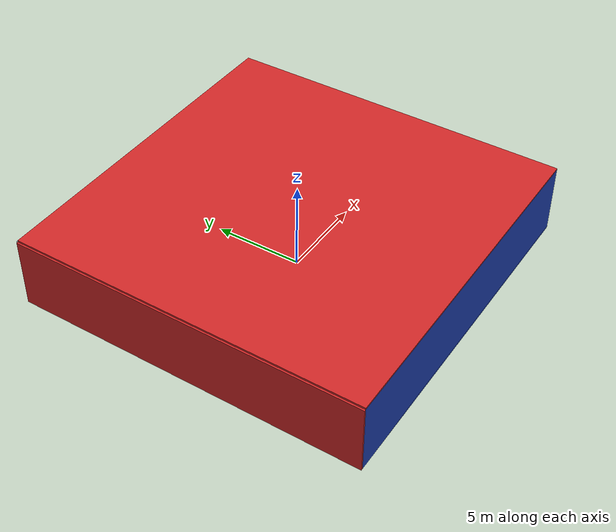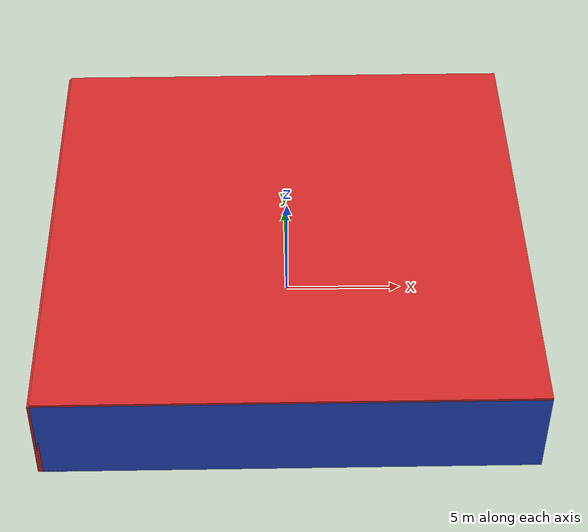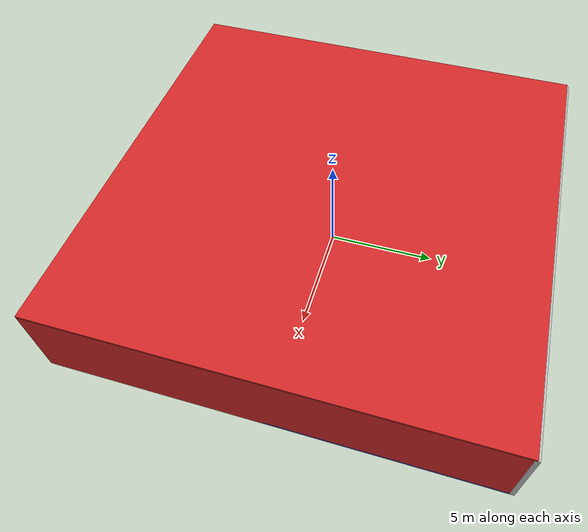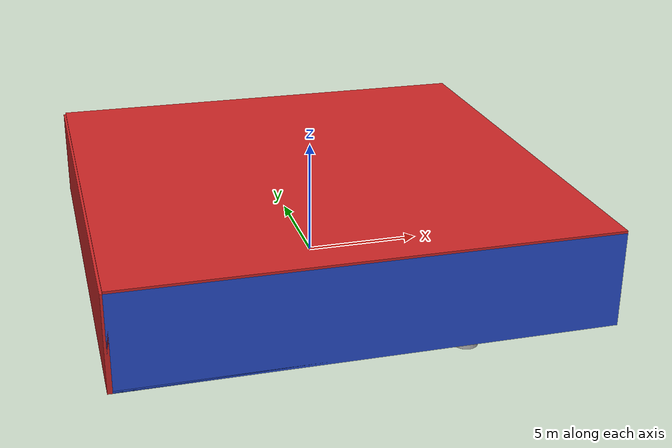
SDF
<sdf version="1.4">
 <world name="default">
  <physics type="ode">
   <max_step_size>0.001</max_step_size>
   <real_time_factor>1</real_time_factor>
   <real_time_update_rate>1000</real_time_update_rate>
   <gravity>0 0 -9.8</gravity>
  </physics>
  <scene><ambient>0.4 0.4 0.4 1</ambient><background>0.7 0.7 0.7 1</background><shadows>1</shadows></scene>
  <model name="Surrounding">
   <static>1</static>
   <link name="Ceiling">
    <collision name="Ceiling_Collision"><geometry><box><size>20 20 0.1</size></box></geometry></collision>
    <visual name="Ceiling_Visual">
     <geometry><box><size>20 20 0.1</size></box></geometry>
     <material>
      <script><uri>file://media/materials/scripts/gazebo.material</uri><name>Gazebo/RedGlow</name></script>
     </material>
    </visual>
    <pose>0 0 4.05 0 0 0</pose>
   </link>
   <link name="Wall_South">
    <collision name="Wall_South_Collision">
     <geometry><box><size>20 0 4</size></box></geometry>
     <pose>0 0 2 0 -0 0</pose>
    </collision>
    <visual name="Wall_South_Visual">
     <pose>0 0 2 0 -0 0</pose>
     <geometry><box><size>20 0 4</size></box></geometry>
     <material>
      <script><uri>file://media/materials/scripts/gazebo.material</uri><name>Gazebo/BlueLaser</name></script>
     </material>
    </visual>
    <velocity_decay><linear>0</linear><angular>0</angular></velocity_decay>
    <pose>0 -10 0 0 -0 0</pose>
   </link>
   <link name="Wall_East">
    <collision name="Wall_21_Collision">
     <geometry><box><size>20 0 4</size></box></geometry>
     <pose>0 0 2 0 -0 0</pose>
    </collision>
    <visual name="Wall_21_Visual">
     <pose>0 0 2 0 -0 0</pose>
     <geometry><box><size>20 0 4</size></box></geometry>
     <material>
      <script><uri>file://media/materials/scripts/gazebo.material</uri><name>Gazebo/RedBright</name></script>
     </material>
    </visual>
    <velocity_decay><linear>0</linear><angular>0</angular></velocity_decay>
    <pose>10 0 0 0 -0 1.5708</pose>
   </link>
   <link name="Wall_North">
    <collision name="Wall_22_Collision">
     <geometry><box><size>20 0.2 4</size></box></geometry>
     <pose>0 0 2 0 -0 0</pose>
    </collision>
    <visual name="Wall_22_Visual">
     <pose>0 0 2 0 -0 0</pose>
     <geometry><box><size>20 0.2 4</size></box></geometry>
     <material>
      <script><uri>file://media/materials/scripts/gazebo.material</uri><name>Gazebo/LightOff</name></script>
     </material>
    </visual>
    <velocity_decay><linear>0</linear><angular>0</angular></velocity_decay>
    <pose>0 10 0 0 -0 0</pose>
   </link>
   <link name="Wall_West">
    <collision name="Wall_23_Collision">
     <geometry><box><size>20 0.2 4</size></box></geometry>
     <pose>0 0 2 0 -0 0</pose>
    </collision>
    <visual name="Wall_23_Visual">
     <pose>0 0 2 0 -0 0</pose>
     <geometry><box><size>20 0.2 4</size></box></geometry>
     <material>
      <script><uri>file://media/materials/scripts/gazebo.material</uri><name>Gazebo/RedGlow</name></script>
     </material>
    </visual>
    <velocity_decay><linear>0</linear><angular>0</angular></velocity_decay>
    <pose>-10 0 0 0 0 -1.5708</pose>
   </link>
   <link name="Ground_link">
    <collision name="collision">
     <pose>0 0 .05 0 -0 0</pose>
     <geometry><box><size>20 20 0.1</size></box></geometry>
    </collision>
    <visual name="visual">
     <pose>0 0 .05 0 -0 0</pose>
     <geometry><box><size>20 20 0.1</size></box></geometry>
     <material>
      <script><uri>file://media/materials/scripts/gazebo.material</uri><name>Gazebo/Blue</name></script>
     </material>
    </visual>
   </link>
   <static>1</static>
  </model>
  <spherical_coordinates>
   <surface_model>EARTH_WGS84</surface_model>
   <latitude_deg>0</latitude_deg>
   <longitude_deg>0</longitude_deg>
   <elevation>0</elevation>
   <heading_deg>0</heading_deg>
  </spherical_coordinates>
  <light name="lightball_0" type="diffuse">
   <diffuse>0.8 0.8 0.8 1</diffuse>
   <specular>0.2 0.2 0.2 1</specular>
   <attenuation>
    <range>100</range>
    <constant>0.7</constant>
    <linear>0.01</linear>
    <quadratic>0.001</quadratic>
   </attenuation>
   <direction>-0.5 0.1 -0.9</direction>
   <pose>-6.55582912182 -5.52894876479 2.12612665478 0 0 0</pose>
  </light>
  <light name="lightball_1" type="diffuse">
   <diffuse>0.8 0.8 0.8 1</diffuse>
   <specular>0.2 0.2 0.2 1</specular>
   <attenuation>
    <range>100</range>
    <constant>0.7</constant>
    <linear>0.01</linear>
    <quadratic>0.001</quadratic>
   </attenuation>
   <direction>-0.5 0.1 -0.9</direction>
   <pose>-8.3735948384 0.167066714461 3.17596334217 0 0 0</pose>
  </light>
  <light name="lightball_2" type="diffuse">
   <diffuse>0.8 0.8 0.8 1</diffuse>
   <specular>0.2 0.2 0.2 1</specular>
   <attenuation>
    <range>100</range>
    <constant>0.7</constant>
    <linear>0.01</linear>
    <quadratic>0.001</quadratic>
   </attenuation>
   <direction>-0.5 0.1 -0.9</direction>
   <pose>9.02602463936 6.34552316052 2.44959209902 0 0 0</pose>
  </light>
  <light name="lightball_3" type="diffuse">
   <diffuse>0.8 0.8 0.8 1</diffuse>
   <specular>0.2 0.2 0.2 1</specular>
   <attenuation>
    <range>100</range>
    <constant>0.7</constant>
    <linear>0.01</linear>
    <quadratic>0.001</quadratic>
   </attenuation>
   <direction>-0.5 0.1 -0.9</direction>
   <pose>-7.77742077549 6.22435607458 2.84865069077 0 0 0</pose>
  </light>
  <light name="lightball_4" type="diffuse">
   <diffuse>0.8 0.8 0.8 1</diffuse>
   <specular>0.2 0.2 0.2 1</specular>
   <attenuation>
    <range>100</range>
    <constant>0.7</constant>
    <linear>0.01</linear>
    <quadratic>0.001</quadratic>
   </attenuation>
   <direction>-0.5 0.1 -0.9</direction>
   <pose>-0.4740350806 -8.50944464693 3.07831718996 0 0 0</pose>
  </light>
  <light name="lightball_5" type="diffuse">
   <diffuse>0.8 0.8 0.8 1</diffuse>
   <specular>0.2 0.2 0.2 1</specular>
   <attenuation>
    <range>100</range>
    <constant>0.7</constant>
    <linear>0.01</linear>
    <quadratic>0.001</quadratic>
   </attenuation>
   <direction>-0.5 0.1 -0.9</direction>
   <pose>-9.98619282814 9.90365350235 1.29963784675 0 0 0</pose>
  </light>
  <light name="lightball_6" type="diffuse">
   <diffuse>0.8 0.8 0.8 1</diffuse>
   <specular>0.2 0.2 0.2 1</specular>
   <attenuation>
    <range>100</range>
    <constant>0.7</constant>
    <linear>0.01</linear>
    <quadratic>0.001</quadratic>
   </attenuation>
   <direction>-0.5 0.1 -0.9</direction>
   <pose>9.32579562816 5.07891278104 3.68519188337 0 0 0</pose>
  </light>
  <light name="lightball_7" type="diffuse">
   <diffuse>0.8 0.8 0.8 1</diffuse>
   <specular>0.2 0.2 0.2 1</specular>
   <attenuation>
    <range>100</range>
    <constant>0.7</constant>
    <linear>0.01</linear>
    <quadratic>0.001</quadratic>
   </attenuation>
   <direction>-0.5 0.1 -0.9</direction>
   <pose>-8.41082351204 -0.880346166969 1.00034173527 0 0 0</pose>
  </light>
  <light name="lightball_8" type="diffuse">
   <diffuse>0.8 0.8 0.8 1</diffuse>
   <specular>0.2 0.2 0.2 1</specular>
   <attenuation>
    <range>100</range>
    <constant>0.7</constant>
    <linear>0.01</linear>
    <quadratic>0.001</quadratic>
   </attenuation>
   <direction>-0.5 0.1 -0.9</direction>
   <pose>2.46399811969 4.99697015291 2.34933650968 0 0 0</pose>
  </light>
  <include>
   <uri>model://textured_shapes</uri>
   <pose>-7.27244480259 -7.73844267093 0 0 0 1.22738522105</pose>
  </include>
  <include>
   <uri>model://robocup_3Dsim_goal</uri>
   <pose>-4.41173288707 -7.47823185443 0 0 0 1.14063034894</pose>
  </include>
  <include>
   <uri>model://construction_cone</uri>
   <pose>1.34286957018 5.02423894384 0 0 0 2.35203133945</pose>
  </include>
  <include>
   <uri>model://textured_shapes</uri>
   <pose>4.33411700572 -7.5426102424 0 0 0 2.89790427535</pose>
  </include>
  <include><uri>model://cabinet</uri><pose>7.20507472945 -7.60552914812 0 0 0 1.81917392881</pose></include>
 </world>
</sdf>

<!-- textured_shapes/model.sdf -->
<sdf version="1.6">
  <model name="textured_shapes">
    <pose>0 0 0.5 0 0 0</pose>
    <link name="box">
      <pose>0 -1.5 0 0 0 0</pose>
      <collision name="collision">
        <geometry>
          <box>
            <size>1 1 1</size>
          </box>
        </geometry>
      </collision>
      <visual name="visual">
        <geometry>
          <box>
            <size>1 1 1</size>
          </box>
        </geometry>
        <material>
          <script>
            <uri>model://../model_source/models/textured_shapes/materials/scripts</uri>
            <uri>model://../model_source/models/textured_shapes/materials/textures</uri>
            <name>TexturedShape/Squares</name>
          </script>
        </material>
      </visual>
    </link>
    <link name="sphere">
      <collision name="collision">
        <geometry>
          <sphere>
            <radius>0.5</radius>
          </sphere>
        </geometry>
      </collision>
      <visual name="visual">
        <geometry>
          <sphere>
            <radius>0.5</radius>
          </sphere>
        </geometry>
        <material>
          <script>
            <uri>model://../model_source/models/textured_shapes/materials/scripts</uri>
            <uri>model://../model_source/models/textured_shapes/materials/textures</uri>
            <name>TexturedShape/Squares</name>
          </script>
        </material>
      </visual>
    </link>
    <link name="cylinder">
      <pose>0 1.5 0 0 0 0</pose>
      <collision name="collision">
        <geometry>
          <cylinder>
            <radius>0.5</radius>
            <length>1</length>
          </cylinder>
        </geometry>
      </collision>
      <visual name="visual">
        <geometry>
          <cylinder>
            <radius>0.5</radius>
            <length>1</length>
          </cylinder>
        </geometry>
        <material>
          <script>
            <uri>model://../model_source/models/textured_shapes/materials/scripts</uri>
            <uri>model://../model_source/models/textured_shapes/materials/textures</uri>
            <name>TexturedShape/Squares</name>
          </script>
        </material>
      </visual>
    </link>
  </model>
</sdf>

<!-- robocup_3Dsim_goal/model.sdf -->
<sdf version="1.5">
  <model name="robocup_3d_goal">
    <static>true</static>
    <link name="left_post">
      <pose>0 1.05 0.45 0 0 0</pose>
      <collision name="collision">
        <geometry>
          <cylinder>
            <radius>0.05</radius>
            <length>0.9</length>
          </cylinder>
        </geometry>
      </collision>
      <visual name="visual">
        <geometry>
          <cylinder>
            <radius>0.05</radius>
            <length>0.9</length>
          </cylinder>
        </geometry>
        <material>
          <script>
            <uri>file://media/materials/scripts/gazebo.material</uri>
            <name>Gazebo/ZincYellow</name>
          </script>
        </material>
      </visual>
    </link>
    <link name="left_support_horiz_lower">
      <pose>0.30 1.05 0.01 0 0 0</pose>
      <collision name="collision">
        <geometry>
          <box>
            <size>0.50 0.02 0.02</size>
          </box>
        </geometry>
      </collision>
      <visual name="visual">
        <geometry>
          <box>
            <size>0.50 0.02 0.02</size>
          </box>
        </geometry>
        <material>
          <script>
            <uri>file://media/materials/scripts/gazebo.material</uri>
            <name>Gazebo/White</name>
          </script>
        </material>
      </visual>
    </link>
    <link name="left_support_horiz_upper">
      <pose>0.30 1.05 0.79 0 0 0</pose>
      <collision name="collision">
        <geometry>
          <box>
            <size>0.50 0.02 0.02</size>
          </box>
        </geometry>
      </collision>
      <visual name="visual">
        <geometry>
          <box>
            <size>0.50 0.02 0.02</size>
          </box>
        </geometry>
        <material>
          <script>
            <uri>file://media/materials/scripts/gazebo.material</uri>
            <name>Gazebo/White</name>
          </script>
        </material>
      </visual>
    </link>
    <link name="left_support_vertical">
      <pose>0.56 1.05 0.4 0 1.5708 0</pose>
      <collision name="collision">
        <geometry>
          <box>
            <size>0.80 0.02 0.02</size>
          </box>
        </geometry>
      </collision>
      <visual name="visual">
        <geometry>
          <box>
            <size>0.80 0.02 0.02</size>
          </box>
        </geometry>
        <material>
          <script>
            <uri>file://media/materials/scripts/gazebo.material</uri>
            <name>Gazebo/White</name>
          </script>
        </material>
      </visual>
    </link>
    <link name="right_support_horiz_lower">
      <pose>0.30 -1.05 0.01 0 0 0</pose>
      <collision name="collision">
        <geometry>
          <box>
            <size>0.50 0.02 0.02</size>
          </box>
        </geometry>
      </collision>
      <visual name="visual">
        <geometry>
          <box>
            <size>0.50 0.02 0.02</size>
          </box>
        </geometry>
        <material>
          <script>
            <uri>file://media/materials/scripts/gazebo.material</uri>
            <name>Gazebo/White</name>
          </script>
        </material>
      </visual>
    </link>
    <link name="right_support_horiz_upper">
      <pose>0.30 -1.05 0.79 0 0 0</pose>
      <collision name="collision">
        <geometry>
          <box>
            <size>0.50 0.02 0.02</size>
          </box>
        </geometry>
      </collision>
      <visual name="visual">
        <geometry>
          <box>
            <size>0.50 0.02 0.02</size>
          </box>
        </geometry>
        <material>
          <script>
            <uri>file://media/materials/scripts/gazebo.material</uri>
            <name>Gazebo/White</name>
          </script>
        </material>
      </visual>
    </link>
    <link name="right_support_vertical">
      <pose>0.56 -1.05 0.4 0 1.5708 0</pose>
      <collision name="collision">
        <geometry>
          <box>
            <size>0.80 0.02 0.02</size>
          </box>
        </geometry>
      </collision>
      <visual name="visual">
        <geometry>
          <box>
            <size>0.80 0.02 0.02</size>
          </box>
        </geometry>
        <material>
          <script>
            <uri>file://media/materials/scripts/gazebo.material</uri>
            <name>Gazebo/White</name>
          </script>
        </material>
      </visual>
    </link>
    <link name="center_support_horiz_lower">
      <pose>0.56 0 0.01 0 1.5708 0</pose>
      <collision name="collision">
        <geometry>
          <box>
            <size>0.02 2.08 0.02</size>
          </box>
        </geometry>
      </collision>
      <visual name="visual">
        <geometry>
          <box>
            <size>0.02 2.08 0.02</size>
          </box>
        </geometry>
        <material>
          <script>
            <uri>file://media/materials/scripts/gazebo.material</uri>
            <name>Gazebo/White</name>
          </script>
        </material>
      </visual>
    </link>
    <link name="center_support_horiz_upper">
      <pose>0.56 0 0.79 0 1.5708 0</pose>
      <collision name="collision">
        <geometry>
          <box>
            <size>0.02 2.08 0.02</size>
          </box>
        </geometry>
      </collision>
      <visual name="visual">
        <geometry>
          <box>
            <size>0.02 2.08 0.02</size>
          </box>
        </geometry>
        <material>
          <script>
            <uri>file://media/materials/scripts/gazebo.material</uri>
            <name>Gazebo/White</name>
          </script>
        </material>
      </visual>
    </link>
    <link name="right_post">
      <pose>0 -1.05 0.45 0 0 0</pose>
      <collision name="collision">
        <geometry>
          <cylinder>
            <radius>0.05</radius>
            <length>0.9</length>
          </cylinder>
        </geometry>
      </collision>
      <visual name="visual">
        <geometry>
          <cylinder>
            <radius>0.05</radius>
            <length>0.9</length>
          </cylinder>
        </geometry>
        <material>
          <script>
            <uri>file://media/materials/scripts/gazebo.material</uri>
            <name>Gazebo/ZincYellow</name>
          </script>
        </material>
      </visual>
    </link>
    <link name="crossbar">
      <pose>0 0 0.85 1.57 1.57 0</pose>
      <collision name="collision">
        <geometry>
          <cylinder>
            <radius>0.05</radius>
            <length>2.0</length>
          </cylinder>
        </geometry>
      </collision>
      <visual name="visual">
        <geometry>
          <cylinder>
            <radius>0.05</radius>
            <length>2.0</length>
          </cylinder>
        </geometry>
        <material>
          <script>
            <uri>file://media/materials/scripts/gazebo.material</uri>
            <name>Gazebo/ZincYellow</name>
          </script>
        </material>
      </visual>
    </link>
    <link name="center_net">
      <pose>0.56 0 0.40 0 0 0</pose>
      <collision name="collision">
        <geometry>
          <box>
            <size>0.01 2.1 0.80</size>
          </box>
        </geometry>
      </collision>
      <visual name="visual">
        <geometry>
          <box>
            <size>0.01 2.1 0.80</size>
          </box>
        </geometry>
        <material>
          <script>
            <uri>model://../model_source/models/robocup09_spl_field/materials/scripts/</uri>
            <uri>model://../model_source/models/robocup09_spl_field/materials/textures/</uri>
            <name>RoboCup/Net</name>
          </script>
        </material>
      </visual>
    </link>
    <link name="left_net">
      <pose>0.30 1.05 0.40 0 0 0</pose>
      <collision name="collision">
        <geometry>
          <box>
            <size>0.50 0.01 0.76</size>
          </box>
        </geometry>
      </collision>
      <visual name="visual">
        <geometry>
          <box>
            <size>0.50 0.01 0.76</size>
          </box>
        </geometry>
        <material>
          <script>
            <uri>model://../model_source/models/robocup09_spl_field/materials/scripts/</uri>
            <uri>model://../model_source/models/robocup09_spl_field/materials/textures/</uri>
            <name>RoboCup/Net</name>
          </script>
        </material>
      </visual>
    </link>
    <link name="right_net">
      <pose>0.30 -1.05 0.40 0 0 0</pose>
      <collision name="collision">
        <geometry>
          <box>
            <size>0.50 0.01 0.76</size>
          </box>
        </geometry>
      </collision>
      <visual name="visual">
        <geometry>
          <box>
            <size>0.50 0.01 0.76</size>
          </box>
        </geometry>
        <material>
          <script>
            <uri>model://../model_source/models/robocup09_spl_field/materials/scripts/</uri>
            <uri>model://../model_source/models/robocup09_spl_field/materials/textures/</uri>
            <name>RoboCup/Net</name>
          </script>
        </material>
      </visual>
    </link>
  </model>
</sdf>

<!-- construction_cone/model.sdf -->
<sdf version="1.5">
  <model name="Construction Cone">
    <link name="link">
      <collision name="collision">
        <geometry>
          <mesh>
            <scale>10 10 10</scale>
            <uri>file://isr-testbed/construction_cone/meshes/construction_cone.dae</uri>
          </mesh>
        </geometry>
      </collision>
      <visual name="visual">
        <geometry>
          <mesh>
            <scale>10 10 10</scale>
            <uri>file://isr-testbed/construction_cone/meshes/construction_cone.dae</uri>
          </mesh>
        </geometry>
      </visual>
    </link>
  </model>
</sdf>

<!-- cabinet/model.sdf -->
<sdf version="1.5">
  <model name="cabinet">
    <static>true</static>
    <link name="cabinet_bottom_plate">
      <inertial>
        <pose>0 0 -1 0 0 0</pose>
        <inertia>
          <ixx>2.050000</ixx>
          <ixy>0</ixy>
          <ixz>0</ixz>
          <iyy>2.050000</iyy>
          <iyz>0</iyz>
          <izz>2.050000</izz>
        </inertia>
        <mass>25.000000</mass>
      </inertial>
      <collision name="cabinet_bottom_plate_geom">
        <pose>0 0 0.010000 0 0 0</pose>
        <geometry>
          <box>
            <size>0.450000 0.450000 0.020000</size>
          </box>
        </geometry>
      </collision>
      <visual name="cabinet_bottom_plate_geom_visual">
        <pose>0 0 0.010000 0 0 0</pose>
        <geometry>
          <box>
            <size>0.450000 0.450000 0.020000</size>
          </box>
        </geometry>
        <material>
          <script>
            <uri>model://media/materials/scripts/gazebo.material</uri>
            <name>Gazebo/Wood</name>
          </script>
        </material>
      </visual>
      <collision name="cabinet_bottom_plate_geom_cabinet_back_plate">
        <pose>0.235000 0 0.510000 0 0 0</pose>
        <geometry>
          <box>
            <size>0.020000 0.450000 1.020000</size>
          </box>
        </geometry>
      </collision>
      <visual name="cabinet_bottom_plate_geom_cabinet_back_plate_visual">
        <pose>0.235000 0 0.510000 0 0 0</pose>
        <geometry>
          <box>
            <size>0.020000 0.450000 1.020000</size>
          </box>
        </geometry>
        <material>
          <script>
            <uri>model://media/materials/scripts/gazebo.material</uri>
            <name>Gazebo/Wood</name>
          </script>
        </material>
      </visual>
      <collision name="cabinet_bottom_plate_geom_cabinet_left_plate">
        <pose>0 0.235000 0.510000 0 0 0</pose>
        <geometry>
          <box>
            <size>0.450000 0.020000 1.020000</size>
          </box>
        </geometry>
      </collision>
      <visual name="cabinet_bottom_plate_geom_cabinet_left_plate_visual">
        <pose>0 0.235000 0.510000 0 0 0</pose>
        <geometry>
          <box>
            <size>0.450000 0.020000 1.020000</size>
          </box>
        </geometry>
        <material>
          <script>
            <uri>model://media/materials/scripts/gazebo.material</uri>
            <name>Gazebo/Wood</name>
          </script>
        </material>
      </visual>
      <collision name="cabinet_bottom_plate_geom_cabinet_middle_plate">
        <pose>0 0 0.510000 0 0 0</pose>
        <geometry>
          <box>
            <size>0.450000 0.450000 0.020000</size>
          </box>
        </geometry>
      </collision>
      <visual name="cabinet_bottom_plate_geom_cabinet_middle_plate_visual">
        <pose>0 0 0.510000 0 0 0</pose>
        <geometry>
          <box>
            <size>0.450000 0.450000 0.020000</size>
          </box>
        </geometry>
        <material>
          <script>
            <uri>model://media/materials/scripts/gazebo.material</uri>
            <name>Gazebo/Wood</name>
          </script>
        </material>
      </visual>
      <collision name="cabinet_bottom_plate_geom_cabinet_right_plate">
        <pose>0 -0.235000 0.510000 0 0 0</pose>
        <geometry>
          <box>
            <size>0.450000 0.020000 1.020000</size>
          </box>
        </geometry>
      </collision>
      <visual name="cabinet_bottom_plate_geom_cabinet_right_plate_visual">
        <pose>0 -0.235000 0.510000 0 0 0</pose>
        <geometry>
          <box>
            <size>0.450000 0.020000 1.020000</size>
          </box>
        </geometry>
        <material>
          <script>
            <uri>model://media/materials/scripts/gazebo.material</uri>
            <name>Gazebo/Wood</name>
          </script>
        </material>
      </visual>
      <collision name="cabinet_bottom_plate_geom_cabinet_top_plate">
        <pose>0 0 1.010000 0 0 0</pose>
        <geometry>
          <box>
            <size>0.450000 0.450000 0.020000</size>
          </box>
        </geometry>
      </collision>
      <visual name="cabinet_bottom_plate_geom_cabinet_top_plate_visual">
        <pose>0 0 1.010000 0 0 0</pose>
        <geometry>
          <box>
            <size>0.450000 0.450000 0.020000</size>
          </box>
        </geometry>
        <material>
          <script>
            <uri>model://media/materials/scripts/gazebo.material</uri>
            <name>Gazebo/Wood</name>
          </script>
        </material>
      </visual>
    </link>
  </model>
</sdf>
